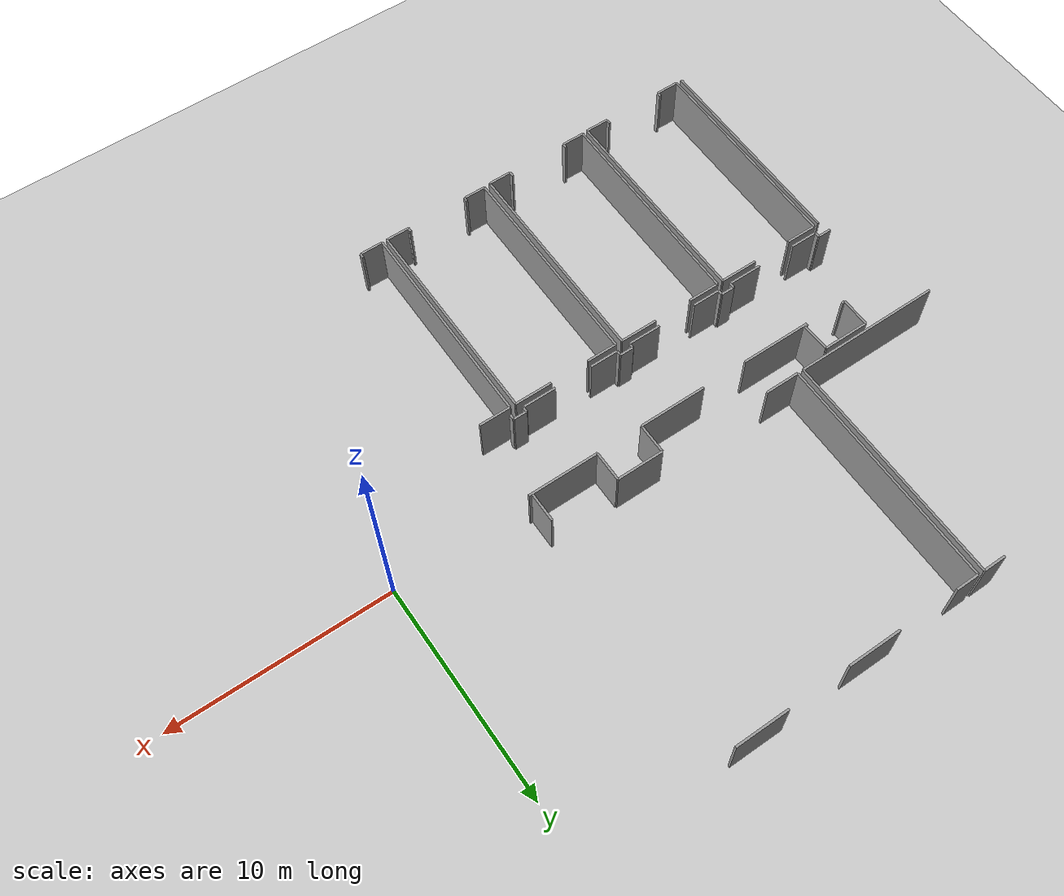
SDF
<sdf version="1.6">
 <world name="default">
  <model name="ground_plane">
   <static>1</static>
   <link name="link">
    <collision name="collision">
     <geometry><plane><normal>0 0 1</normal><size>100 100</size></plane></geometry>
     <surface><friction><ode><mu>100</mu><mu2>50</mu2></ode></friction></surface>
    </collision>
    <visual name="visual">
     <cast_shadows>0</cast_shadows>
     <geometry><plane><normal>0 0 1</normal><size>100 100</size></plane></geometry>
     <material>
      <script><uri>file://media/materials/scripts/gazebo.material</uri><name>Gazebo/Grey</name></script>
     </material>
    </visual>
   </link>
  </model>
  <model name="0510030968_A-40">
   <static>1</static>
   <link name="Wall_35">
    <collision name="Wall_35_Collision">
     <geometry><box><size>3.23386307913 0.1 2.5</size></box></geometry>
     <pose>1.61693153957 0 1.25 0 0 0</pose>
    </collision>
    <visual name="Wall_35_Visual">
     <pose>1.61693153957 0 1.25 0 0 0</pose>
     <geometry><box><size>3.23386307913 0.1 2.5</size></box></geometry>
     <material>
      <script><uri>file://media/materials/scripts/gazebo.material</uri><name>Gazebo/Grey</name></script>
      <ambient>1 1 1 1</ambient>
     </material>
    </visual>
    <pose>18.9809062845 -12.2749850731 0 0 0 0.0</pose>
   </link>
   <link name="Wall_36">
    <collision name="Wall_36_Collision">
     <geometry><box><size>3.08218046928 0.1 2.5</size></box></geometry>
     <pose>1.54109023464 0 1.25 0 0 0</pose>
    </collision>
    <visual name="Wall_36_Visual">
     <pose>1.54109023464 0 1.25 0 0 0</pose>
     <geometry><box><size>3.08218046928 0.1 2.5</size></box></geometry>
     <material>
      <script><uri>file://media/materials/scripts/gazebo.material</uri><name>Gazebo/Grey</name></script>
      <ambient>1 1 1 1</ambient>
     </material>
    </visual>
    <pose>24.3069476733 -12.2749850731 0 0 0 0.0</pose>
   </link>
   <link name="Wall_37">
    <collision name="Wall_37_Collision">
     <geometry><box><size>1.37568758972 0.1 2.5</size></box></geometry>
     <pose>0.68784379486 0 1.25 0 0 0</pose>
    </collision>
    <visual name="Wall_37_Visual">
     <pose>0.68784379486 0 1.25 0 0 0</pose>
     <geometry><box><size>1.37568758972 0.1 2.5</size></box></geometry>
     <material>
      <script><uri>file://media/materials/scripts/gazebo.material</uri><name>Gazebo/Grey</name></script>
      <ambient>1 1 1 1</ambient>
     </material>
    </visual>
    <pose>27.3891281426 -12.2749850731 0 0 0 1.57079632679</pose>
   </link>
   <link name="Wall_38">
    <collision name="Wall_38_Collision">
     <geometry><box><size>2.1384199093 0.1 2.5</size></box></geometry>
     <pose>1.06920995465 0 1.25 0 0 0</pose>
    </collision>
    <visual name="Wall_38_Visual">
     <pose>1.06920995465 0 1.25 0 0 0</pose>
     <geometry><box><size>2.1384199093 0.1 2.5</size></box></geometry>
     <material>
      <script><uri>file://media/materials/scripts/gazebo.material</uri><name>Gazebo/Grey</name></script>
      <ambient>1 1 1 1</ambient>
     </material>
    </visual>
    <pose>27.3891281426 -10.8992974834 0 0 0 0.0</pose>
   </link>
   <link name="Wall_39">
    <collision name="Wall_39_Collision">
     <geometry><box><size>1.37822833695 0.1 2.5</size></box></geometry>
     <pose>0.689114168477 0 1.25 0 0 0</pose>
    </collision>
    <visual name="Wall_39_Visual">
     <pose>0.689114168477 0 1.25 0 0 0</pose>
     <geometry><box><size>1.37822833695 0.1 2.5</size></box></geometry>
     <material>
      <script><uri>file://media/materials/scripts/gazebo.material</uri><name>Gazebo/Grey</name></script>
      <ambient>1 1 1 1</ambient>
     </material>
    </visual>
    <pose>29.5275480519 -10.8992974834 0 0 0 -1.57079632679</pose>
   </link>
   <link name="Wall_40">
    <collision name="Wall_40_Collision">
     <geometry><box><size>3.23259270551 0.1 2.5</size></box></geometry>
     <pose>1.61629635276 0 1.25 0 0 0</pose>
    </collision>
    <visual name="Wall_40_Visual">
     <pose>1.61629635276 0 1.25 0 0 0</pose>
     <geometry><box><size>3.23259270551 0.1 2.5</size></box></geometry>
     <material>
      <script><uri>file://media/materials/scripts/gazebo.material</uri><name>Gazebo/Grey</name></script>
      <ambient>1 1 1 1</ambient>
     </material>
    </visual>
    <pose>29.5275480519 -12.2775258203 0 0 0 0.0</pose>
   </link>
   <link name="Wall_73">
    <collision name="Wall_73_Collision">
     <geometry><box><size>0.243784697079 0.1 2.5</size></box></geometry>
     <pose>0.12189234854 0 1.25 0 0 0</pose>
    </collision>
    <visual name="Wall_73_Visual">
     <pose>0.12189234854 0 1.25 0 0 0</pose>
     <geometry><box><size>0.243784697079 0.1 2.5</size></box></geometry>
     <material>
      <script><uri>file://media/materials/scripts/gazebo.material</uri><name>Gazebo/Grey</name></script>
      <ambient>1 1 1 1</ambient>
     </material>
    </visual>
    <pose>31.3651434887 -15.6452862787 0 0 0 1.57079632679</pose>
   </link>
   <link name="Wall_74">
    <collision name="Wall_74_Collision">
     <geometry><box><size>0.609779336103 0.1 2.5</size></box></geometry>
     <pose>0.304889668051 0 1.25 0 0 0</pose>
    </collision>
    <visual name="Wall_74_Visual">
     <pose>0.304889668051 0 1.25 0 0 0</pose>
     <geometry><box><size>0.609779336103 0.1 2.5</size></box></geometry>
     <material>
      <script><uri>file://media/materials/scripts/gazebo.material</uri><name>Gazebo/Grey</name></script>
      <ambient>1 1 1 1</ambient>
     </material>
    </visual>
    <pose>31.3651434887 -15.4015015816 0 0 0 3.14159265359</pose>
   </link>
   <link name="Wall_75">
    <collision name="Wall_75_Collision">
     <geometry><box><size>0.242260248739 0.1 2.5</size></box></geometry>
     <pose>0.12113012437 0 1.25 0 0 0</pose>
    </collision>
    <visual name="Wall_75_Visual">
     <pose>0.12113012437 0 1.25 0 0 0</pose>
     <geometry><box><size>0.242260248739 0.1 2.5</size></box></geometry>
     <material>
      <script><uri>file://media/materials/scripts/gazebo.material</uri><name>Gazebo/Grey</name></script>
      <ambient>1 1 1 1</ambient>
     </material>
    </visual>
    <pose>30.7553641526 -15.4015015816 0 0 0 -1.57079632679</pose>
   </link>
   <link name="Wall_76">
    <collision name="Wall_76_Collision">
     <geometry><box><size>1.54579061702 0.1 2.5</size></box></geometry>
     <pose>0.77289530851 0 1.25 0 0 0</pose>
    </collision>
    <visual name="Wall_76_Visual">
     <pose>0.77289530851 0 1.25 0 0 0</pose>
     <geometry><box><size>1.54579061702 0.1 2.5</size></box></geometry>
     <material>
      <script><uri>file://media/materials/scripts/gazebo.material</uri><name>Gazebo/Grey</name></script>
      <ambient>1 1 1 1</ambient>
     </material>
    </visual>
    <pose>30.7553641526 -15.6437618304 0 0 0 3.14159265359</pose>
   </link>
   <link name="Wall_77">
    <collision name="Wall_77_Collision">
     <geometry><box><size>1.30353036828 0.1 2.5</size></box></geometry>
     <pose>0.651765184141 0 1.25 0 0 0</pose>
    </collision>
    <visual name="Wall_77_Visual">
     <pose>0.651765184141 0 1.25 0 0 0</pose>
     <geometry><box><size>1.30353036828 0.1 2.5</size></box></geometry>
     <material>
      <script><uri>file://media/materials/scripts/gazebo.material</uri><name>Gazebo/Grey</name></script>
      <ambient>1 1 1 1</ambient>
     </material>
    </visual>
    <pose>27.4610312893 -15.6437618304 0 0 0 3.14159265359</pose>
   </link>
   <link name="Wall_78">
    <collision name="Wall_78_Collision">
     <geometry><box><size>0.233621708144 0.1 2.5</size></box></geometry>
     <pose>0.116810854072 0 1.25 0 0 0</pose>
    </collision>
    <visual name="Wall_78_Visual">
     <pose>0.116810854072 0 1.25 0 0 0</pose>
     <geometry><box><size>0.233621708144 0.1 2.5</size></box></geometry>
     <material>
      <script><uri>file://media/materials/scripts/gazebo.material</uri><name>Gazebo/Grey</name></script>
      <ambient>1 1 1 1</ambient>
     </material>
    </visual>
    <pose>26.157500921 -15.6437618304 0 0 0 1.57079632679</pose>
   </link>
   <link name="Wall_79">
    <collision name="Wall_79_Collision">
     <geometry><box><size>0.622737146995 0.1 2.5</size></box></geometry>
     <pose>0.311368573497 0 1.25 0 0 0</pose>
    </collision>
    <visual name="Wall_79_Visual">
     <pose>0.311368573497 0 1.25 0 0 0</pose>
     <geometry><box><size>0.622737146995 0.1 2.5</size></box></geometry>
     <material>
      <script><uri>file://media/materials/scripts/gazebo.material</uri><name>Gazebo/Grey</name></script>
      <ambient>1 1 1 1</ambient>
     </material>
    </visual>
    <pose>26.157500921 -15.4101401222 0 0 0 3.14159265359</pose>
   </link>
   <link name="Wall_80">
    <collision name="Wall_80_Collision">
     <geometry><box><size>0.225237242273 0.1 2.5</size></box></geometry>
     <pose>0.112618621136 0 1.25 0 0 0</pose>
    </collision>
    <visual name="Wall_80_Visual">
     <pose>0.112618621136 0 1.25 0 0 0</pose>
     <geometry><box><size>0.225237242273 0.1 2.5</size></box></geometry>
     <material>
      <script><uri>file://media/materials/scripts/gazebo.material</uri><name>Gazebo/Grey</name></script>
      <ambient>1 1 1 1</ambient>
     </material>
    </visual>
    <pose>25.534763774 -15.4101401222 0 0 0 -1.57079632679</pose>
   </link>
   <link name="Wall_81">
    <collision name="Wall_81_Collision">
     <geometry><box><size>1.51187164145 0.1 2.5</size></box></geometry>
     <pose>0.755935820725 0 1.25 0 0 0</pose>
    </collision>
    <visual name="Wall_81_Visual">
     <pose>0.755935820725 0 1.25 0 0 0</pose>
     <geometry><box><size>1.51187164145 0.1 2.5</size></box></geometry>
     <material>
      <script><uri>file://media/materials/scripts/gazebo.material</uri><name>Gazebo/Grey</name></script>
      <ambient>1 1 1 1</ambient>
     </material>
    </visual>
    <pose>25.534763774 -15.6353773645 0 0 0 3.14159265359</pose>
   </link>
   <link name="Wall_82">
    <collision name="Wall_82_Collision">
     <geometry><box><size>1.30010035952 0.1 2.5</size></box></geometry>
     <pose>0.650050179758 0 1.25 0 0 0</pose>
    </collision>
    <visual name="Wall_82_Visual">
     <pose>0.650050179758 0 1.25 0 0 0</pose>
     <geometry><box><size>1.30010035952 0.1 2.5</size></box></geometry>
     <material>
      <script><uri>file://media/materials/scripts/gazebo.material</uri><name>Gazebo/Grey</name></script>
      <ambient>1 1 1 1</ambient>
     </material>
    </visual>
    <pose>22.2585972535 -15.6353773645 0 0 0 3.14159265359</pose>
   </link>
   <link name="Wall_83">
    <collision name="Wall_83_Collision">
     <geometry><box><size>0.229810587294 0.1 2.5</size></box></geometry>
     <pose>0.114905293647 0 1.25 0 0 0</pose>
    </collision>
    <visual name="Wall_83_Visual">
     <pose>0.114905293647 0 1.25 0 0 0</pose>
     <geometry><box><size>0.229810587294 0.1 2.5</size></box></geometry>
     <material>
      <script><uri>file://media/materials/scripts/gazebo.material</uri><name>Gazebo/Grey</name></script>
      <ambient>1 1 1 1</ambient>
     </material>
    </visual>
    <pose>20.9584968939 -15.6353773645 0 0 0 1.57079632679</pose>
   </link>
   <link name="Wall_84">
    <collision name="Wall_84_Collision">
     <geometry><box><size>0.610160448188 0.1 2.5</size></box></geometry>
     <pose>0.305080224094 0 1.25 0 0 0</pose>
    </collision>
    <visual name="Wall_84_Visual">
     <pose>0.305080224094 0 1.25 0 0 0</pose>
     <geometry><box><size>0.610160448188 0.1 2.5</size></box></geometry>
     <material>
      <script><uri>file://media/materials/scripts/gazebo.material</uri><name>Gazebo/Grey</name></script>
      <ambient>1 1 1 1</ambient>
     </material>
    </visual>
    <pose>20.9584968939 -15.4055667772 0 0 0 3.14159265359</pose>
   </link>
   <link name="Wall_85">
    <collision name="Wall_85_Collision">
     <geometry><box><size>0.232351334527 0.1 2.5</size></box></geometry>
     <pose>0.116175667264 0 1.25 0 0 0</pose>
    </collision>
    <visual name="Wall_85_Visual">
     <pose>0.116175667264 0 1.25 0 0 0</pose>
     <geometry><box><size>0.232351334527 0.1 2.5</size></box></geometry>
     <material>
      <script><uri>file://media/materials/scripts/gazebo.material</uri><name>Gazebo/Grey</name></script>
      <ambient>1 1 1 1</ambient>
     </material>
    </visual>
    <pose>20.3483364457 -15.4055667772 0 0 0 -1.57079632679</pose>
   </link>
   <link name="Wall_86">
    <collision name="Wall_86_Collision">
     <geometry><box><size>1.56154324987 0.1 2.5</size></box></geometry>
     <pose>0.780771624935 0 1.25 0 0 0</pose>
    </collision>
    <visual name="Wall_86_Visual">
     <pose>0.780771624935 0 1.25 0 0 0</pose>
     <geometry><box><size>1.56154324987 0.1 2.5</size></box></geometry>
     <material>
      <script><uri>file://media/materials/scripts/gazebo.material</uri><name>Gazebo/Grey</name></script>
      <ambient>1 1 1 1</ambient>
     </material>
    </visual>
    <pose>20.3483364457 -15.6379181117 0 0 0 3.14159265359</pose>
   </link>
   <link name="Wall_87">
    <collision name="Wall_87_Collision">
     <geometry><box><size>1.26122692684 0.1 2.5</size></box></geometry>
     <pose>0.63061346342 0 1.25 0 0 0</pose>
    </collision>
    <visual name="Wall_87_Visual">
     <pose>0.63061346342 0 1.25 0 0 0</pose>
     <geometry><box><size>1.26122692684 0.1 2.5</size></box></geometry>
     <material>
      <script><uri>file://media/materials/scripts/gazebo.material</uri><name>Gazebo/Grey</name></script>
      <ambient>1 1 1 1</ambient>
     </material>
    </visual>
    <pose>17.0315179694 -15.6379181117 0 0 0 3.14159265359</pose>
   </link>
   <link name="Wall_88">
    <collision name="Wall_88_Collision">
     <geometry><box><size>0.236416530102 0.1 2.5</size></box></geometry>
     <pose>0.118208265051 0 1.25 0 0 0</pose>
    </collision>
    <visual name="Wall_88_Visual">
     <pose>0.118208265051 0 1.25 0 0 0</pose>
     <geometry><box><size>0.236416530102 0.1 2.5</size></box></geometry>
     <material>
      <script><uri>file://media/materials/scripts/gazebo.material</uri><name>Gazebo/Grey</name></script>
      <ambient>1 1 1 1</ambient>
     </material>
    </visual>
    <pose>15.7702910426 -15.6379181117 0 0 0 1.57079632679</pose>
   </link>
   <link name="Wall_89">
    <collision name="Wall_89_Collision">
     <geometry><box><size>0.629470127164 0.1 2.5</size></box></geometry>
     <pose>0.314735063582 0 1.25 0 0 0</pose>
    </collision>
    <visual name="Wall_89_Visual">
     <pose>0.314735063582 0 1.25 0 0 0</pose>
     <geometry><box><size>0.629470127164 0.1 2.5</size></box></geometry>
     <material>
      <script><uri>file://media/materials/scripts/gazebo.material</uri><name>Gazebo/Grey</name></script>
      <ambient>1 1 1 1</ambient>
     </material>
    </visual>
    <pose>15.7702910426 -15.4015015816 0 0 0 3.14159265359</pose>
   </link>
   <link name="Wall_115">
    <collision name="Wall_115_Collision">
     <geometry><box><size>9.77873730657 0.1 2.5</size></box></geometry>
     <pose>4.88936865328 0 1.25 0 0 0</pose>
    </collision>
    <visual name="Wall_115_Visual">
     <pose>4.88936865328 0 1.25 0 0 0</pose>
     <geometry><box><size>9.77873730657 0.1 2.5</size></box></geometry>
     <material>
      <script><uri>file://media/materials/scripts/gazebo.material</uri><name>Gazebo/Grey</name></script>
      <ambient>1 1 1 1</ambient>
     </material>
    </visual>
    <pose>15.3412858722 -15.9358207249 0 0 0 -1.57352447852</pose>
   </link>
   <link name="Wall_116">
    <collision name="Wall_116_Collision">
     <geometry><box><size>1.07981757435 0.1 2.5</size></box></geometry>
     <pose>0.539908787174 0 1.25 0 0 0</pose>
    </collision>
    <visual name="Wall_116_Visual">
     <pose>0.539908787174 0 1.25 0 0 0</pose>
     <geometry><box><size>1.07981757435 0.1 2.5</size></box></geometry>
     <material>
      <script><uri>file://media/materials/scripts/gazebo.material</uri><name>Gazebo/Grey</name></script>
      <ambient>1 1 1 1</ambient>
     </material>
    </visual>
    <pose>20.5358435916 -25.7399291132 0 0 0 3.14159265359</pose>
   </link>
   <link name="Wall_117">
    <collision name="Wall_117_Collision">
     <geometry><box><size>0.228667251039 0.1 2.5</size></box></geometry>
     <pose>0.114333625519 0 1.25 0 0 0</pose>
    </collision>
    <visual name="Wall_117_Visual">
     <pose>0.114333625519 0 1.25 0 0 0</pose>
     <geometry><box><size>0.228667251039 0.1 2.5</size></box></geometry>
     <material>
      <script><uri>file://media/materials/scripts/gazebo.material</uri><name>Gazebo/Grey</name></script>
      <ambient>1 1 1 1</ambient>
     </material>
    </visual>
    <pose>19.4560260173 -25.7399291132 0 0 0 1.57079632679</pose>
   </link>
   <link name="Wall_118">
    <collision name="Wall_118_Collision">
     <geometry><box><size>0.197797172148 0.1 2.5</size></box></geometry>
     <pose>0.0988985860742 0 1.25 0 0 0</pose>
    </collision>
    <visual name="Wall_118_Visual">
     <pose>0.0988985860742 0 1.25 0 0 0</pose>
     <geometry><box><size>0.197797172148 0.1 2.5</size></box></geometry>
     <material>
      <script><uri>file://media/materials/scripts/gazebo.material</uri><name>Gazebo/Grey</name></script>
      <ambient>1 1 1 1</ambient>
     </material>
    </visual>
    <pose>16.6473569877 -25.5112618621 0 0 0 -1.57079632679</pose>
   </link>
   <link name="Wall_119">
    <collision name="Wall_119_Collision">
     <geometry><box><size>1.06088900746 0.1 2.5</size></box></geometry>
     <pose>0.530444503729 0 1.25 0 0 0</pose>
    </collision>
    <visual name="Wall_119_Visual">
     <pose>0.530444503729 0 1.25 0 0 0</pose>
     <geometry><box><size>1.06088900746 0.1 2.5</size></box></geometry>
     <material>
      <script><uri>file://media/materials/scripts/gazebo.material</uri><name>Gazebo/Grey</name></script>
      <ambient>1 1 1 1</ambient>
     </material>
    </visual>
    <pose>16.6473569877 -25.7090590343 0 0 0 3.14159265359</pose>
   </link>
   <link name="Wall_120">
    <collision name="Wall_120_Collision">
     <geometry><box><size>9.78492574666 0.1 2.5</size></box></geometry>
     <pose>4.89246287333 0 1.25 0 0 0</pose>
    </collision>
    <visual name="Wall_120_Visual">
     <pose>4.89246287333 0 1.25 0 0 0</pose>
     <geometry><box><size>9.78492574666 0.1 2.5</size></box></geometry>
     <material>
      <script><uri>file://media/materials/scripts/gazebo.material</uri><name>Gazebo/Grey</name></script>
      <ambient>1 1 1 1</ambient>
     </material>
    </visual>
    <pose>15.5864679802 -25.7090590343 0 0 0 1.57079632679</pose>
   </link>
   <link name="Wall_121">
    <collision name="Wall_121_Collision">
     <geometry><box><size>1.42396178716 0.1 2.5</size></box></geometry>
     <pose>0.711980893581 0 1.25 0 0 0</pose>
    </collision>
    <visual name="Wall_121_Visual">
     <pose>0.711980893581 0 1.25 0 0 0</pose>
     <geometry><box><size>1.42396178716 0.1 2.5</size></box></geometry>
     <material>
      <script><uri>file://media/materials/scripts/gazebo.material</uri><name>Gazebo/Grey</name></script>
      <ambient>1 1 1 1</ambient>
     </material>
    </visual>
    <pose>15.5864679802 -15.9241332876 0 0 0 0.0</pose>
   </link>
   <link name="Wall_122">
    <collision name="Wall_122_Collision">
     <geometry><box><size>1.72910552994 0.1 2.5</size></box></geometry>
     <pose>0.864552764968 0 1.25 0 0 0</pose>
    </collision>
    <visual name="Wall_122_Visual">
     <pose>0.864552764968 0 1.25 0 0 0</pose>
     <geometry><box><size>1.72910552994 0.1 2.5</size></box></geometry>
     <material>
      <script><uri>file://media/materials/scripts/gazebo.material</uri><name>Gazebo/Grey</name></script>
      <ambient>1 1 1 1</ambient>
     </material>
    </visual>
    <pose>18.7898420926 -15.9241332876 0 0 0 0.0</pose>
   </link>
   <link name="Wall_123">
    <collision name="Wall_123_Collision">
     <geometry><box><size>9.81581036709 0.1 2.5</size></box></geometry>
     <pose>4.90790518355 0 1.25 0 0 0</pose>
    </collision>
    <visual name="Wall_123_Visual">
     <pose>4.90790518355 0 1.25 0 0 0</pose>
     <geometry><box><size>9.81581036709 0.1 2.5</size></box></geometry>
     <material>
      <script><uri>file://media/materials/scripts/gazebo.material</uri><name>Gazebo/Grey</name></script>
      <ambient>1 1 1 1</ambient>
     </material>
    </visual>
    <pose>20.5189476225 -15.9241332876 0 0 0 -1.56907502445</pose>
   </link>
   <link name="Wall_124">
    <collision name="Wall_124_Collision">
     <geometry><box><size>1.05872937231 0.1 2.5</size></box></geometry>
     <pose>0.529364686154 0 1.25 0 0 0</pose>
    </collision>
    <visual name="Wall_124_Visual">
     <pose>0.529364686154 0 1.25 0 0 0</pose>
     <geometry><box><size>1.05872937231 0.1 2.5</size></box></geometry>
     <material>
      <script><uri>file://media/materials/scripts/gazebo.material</uri><name>Gazebo/Grey</name></script>
      <ambient>1 1 1 1</ambient>
     </material>
    </visual>
    <pose>25.713886454 -25.7386587395 0 0 0 3.14159265359</pose>
   </link>
   <link name="Wall_125">
    <collision name="Wall_125_Collision">
     <geometry><box><size>0.231843185081 0.1 2.5</size></box></geometry>
     <pose>0.11592159254 0 1.25 0 0 0</pose>
    </collision>
    <visual name="Wall_125_Visual">
     <pose>0.11592159254 0 1.25 0 0 0</pose>
     <geometry><box><size>0.231843185081 0.1 2.5</size></box></geometry>
     <material>
      <script><uri>file://media/materials/scripts/gazebo.material</uri><name>Gazebo/Grey</name></script>
      <ambient>1 1 1 1</ambient>
     </material>
    </visual>
    <pose>24.6551570817 -25.7386587395 0 0 0 1.57079632679</pose>
   </link>
   <link name="Wall_126">
    <collision name="Wall_126_Collision">
     <geometry><box><size>0.198813471042 0.1 2.5</size></box></geometry>
     <pose>0.0994067355209 0 1.25 0 0 0</pose>
    </collision>
    <visual name="Wall_126_Visual">
     <pose>0.0994067355209 0 1.25 0 0 0</pose>
     <geometry><box><size>0.198813471042 0.1 2.5</size></box></geometry>
     <material>
      <script><uri>file://media/materials/scripts/gazebo.material</uri><name>Gazebo/Grey</name></script>
      <ambient>1 1 1 1</ambient>
     </material>
    </visual>
    <pose>21.8492828741 -25.5068155545 0 0 0 -1.57079632679</pose>
   </link>
   <link name="Wall_127">
    <collision name="Wall_127_Collision">
     <geometry><box><size>1.04945564491 0.1 2.5</size></box></geometry>
     <pose>0.524727822453 0 1.25 0 0 0</pose>
    </collision>
    <visual name="Wall_127_Visual">
     <pose>0.524727822453 0 1.25 0 0 0</pose>
     <geometry><box><size>1.04945564491 0.1 2.5</size></box></geometry>
     <material>
      <script><uri>file://media/materials/scripts/gazebo.material</uri><name>Gazebo/Grey</name></script>
      <ambient>1 1 1 1</ambient>
     </material>
    </visual>
    <pose>21.8492828741 -25.7056290255 0 0 0 3.14159265359</pose>
   </link>
   <link name="Wall_128">
    <collision name="Wall_128_Collision">
     <geometry><box><size>9.78619612028 0.1 2.5</size></box></geometry>
     <pose>4.89309806014 0 1.25 0 0 0</pose>
    </collision>
    <visual name="Wall_128_Visual">
     <pose>4.89309806014 0 1.25 0 0 0</pose>
     <geometry><box><size>9.78619612028 0.1 2.5</size></box></geometry>
     <material>
      <script><uri>file://media/materials/scripts/gazebo.material</uri><name>Gazebo/Grey</name></script>
      <ambient>1 1 1 1</ambient>
     </material>
    </visual>
    <pose>20.7998272292 -25.7056290255 0 0 0 1.57079632679</pose>
   </link>
   <link name="Wall_129">
    <collision name="Wall_129_Collision">
     <geometry><box><size>1.43552218708 0.1 2.5</size></box></geometry>
     <pose>0.717761093538 0 1.25 0 0 0</pose>
    </collision>
    <visual name="Wall_129_Visual">
     <pose>0.717761093538 0 1.25 0 0 0</pose>
     <geometry><box><size>1.43552218708 0.1 2.5</size></box></geometry>
     <material>
      <script><uri>file://media/materials/scripts/gazebo.material</uri><name>Gazebo/Grey</name></script>
      <ambient>1 1 1 1</ambient>
     </material>
    </visual>
    <pose>20.7998272292 -15.9194329052 0 0 0 0.0</pose>
   </link>
   <link name="Wall_130">
    <collision name="Wall_130_Collision">
     <geometry><box><size>1.72072106406 0.1 2.5</size></box></geometry>
     <pose>0.860360532032 0 1.25 0 0 0</pose>
    </collision>
    <visual name="Wall_130_Visual">
     <pose>0.860360532032 0 1.25 0 0 0</pose>
     <geometry><box><size>1.72072106406 0.1 2.5</size></box></geometry>
     <material>
      <script><uri>file://media/materials/scripts/gazebo.material</uri><name>Gazebo/Grey</name></script>
      <ambient>1 1 1 1</ambient>
     </material>
    </visual>
    <pose>23.9978657723 -15.9194329052 0 0 0 0.0</pose>
   </link>
   <link name="Wall_131">
    <collision name="Wall_131_Collision">
     <geometry><box><size>9.81922695933 0.1 2.5</size></box></geometry>
     <pose>4.90961347967 0 1.25 0 0 0</pose>
    </collision>
    <visual name="Wall_131_Visual">
     <pose>4.90961347967 0 1.25 0 0 0</pose>
     <geometry><box><size>9.81922695933 0.1 2.5</size></box></geometry>
     <material>
      <script><uri>file://media/materials/scripts/gazebo.material</uri><name>Gazebo/Grey</name></script>
      <ambient>1 1 1 1</ambient>
     </material>
    </visual>
    <pose>25.7185868364 -15.9194329052 0 0 0 -1.57127501851</pose>
   </link>
   <link name="Wall_132">
    <collision name="Wall_132_Collision">
     <geometry><box><size>1.06774902499 0.1 2.5</size></box></geometry>
     <pose>0.533874512494 0 1.25 0 0 0</pose>
    </collision>
    <visual name="Wall_132_Visual">
     <pose>0.533874512494 0 1.25 0 0 0</pose>
     <geometry><box><size>1.06774902499 0.1 2.5</size></box></geometry>
     <material>
      <script><uri>file://media/materials/scripts/gazebo.material</uri><name>Gazebo/Grey</name></script>
      <ambient>1 1 1 1</ambient>
     </material>
    </visual>
    <pose>30.95290725 -25.7123620057 0 0 0 3.14159265359</pose>
   </link>
   <link name="Wall_133">
    <collision name="Wall_133_Collision">
     <geometry><box><size>0.198051246872 0.1 2.5</size></box></geometry>
     <pose>0.0990256234358 0 1.25 0 0 0</pose>
    </collision>
    <visual name="Wall_133_Visual">
     <pose>0.0990256234358 0 1.25 0 0 0</pose>
     <geometry><box><size>0.198051246872 0.1 2.5</size></box></geometry>
     <material>
      <script><uri>file://media/materials/scripts/gazebo.material</uri><name>Gazebo/Grey</name></script>
      <ambient>1 1 1 1</ambient>
     </material>
    </visual>
    <pose>29.885158225 -25.7123620057 0 0 0 1.57079632679</pose>
   </link>
   <link name="Wall_134">
    <collision name="Wall_134_Collision">
     <geometry><box><size>0.181155277767 0.1 2.5</size></box></geometry>
     <pose>0.0905776388836 0 1.25 0 0 0</pose>
    </collision>
    <visual name="Wall_134_Visual">
     <pose>0.0905776388836 0 1.25 0 0 0</pose>
     <geometry><box><size>0.181155277767 0.1 2.5</size></box></geometry>
     <material>
      <script><uri>file://media/materials/scripts/gazebo.material</uri><name>Gazebo/Grey</name></script>
      <ambient>1 1 1 1</ambient>
     </material>
    </visual>
    <pose>27.0456191166 -25.5143107588 0 0 0 -1.57079632679</pose>
   </link>
   <link name="Wall_135">
    <collision name="Wall_135_Collision">
     <geometry><box><size>1.02697003189 0.1 2.5</size></box></geometry>
     <pose>0.513485015943 0 1.25 0 0 0</pose>
    </collision>
    <visual name="Wall_135_Visual">
     <pose>0.513485015943 0 1.25 0 0 0</pose>
     <geometry><box><size>1.02697003189 0.1 2.5</size></box></geometry>
     <material>
      <script><uri>file://media/materials/scripts/gazebo.material</uri><name>Gazebo/Grey</name></script>
      <ambient>1 1 1 1</ambient>
     </material>
    </visual>
    <pose>27.0456191166 -25.6954660366 0 0 0 3.14159265359</pose>
   </link>
   <link name="Wall_136">
    <collision name="Wall_136_Collision">
     <geometry><box><size>9.76510791824 0.1 2.5</size></box></geometry>
     <pose>4.88255395912 0 1.25 0 0 0</pose>
    </collision>
    <visual name="Wall_136_Visual">
     <pose>4.88255395912 0 1.25 0 0 0</pose>
     <geometry><box><size>9.76510791824 0.1 2.5</size></box></geometry>
     <material>
      <script><uri>file://media/materials/scripts/gazebo.material</uri><name>Gazebo/Grey</name></script>
      <ambient>1 1 1 1</ambient>
     </material>
    </visual>
    <pose>26.0186490847 -25.6954660366 0 0 0 1.57079632679</pose>
   </link>
   <link name="Wall_137">
    <collision name="Wall_137_Collision">
     <geometry><box><size>1.39423504453 0.1 2.5</size></box></geometry>
     <pose>0.697117522263 0 1.25 0 0 0</pose>
    </collision>
    <visual name="Wall_137_Visual">
     <pose>0.697117522263 0 1.25 0 0 0</pose>
     <geometry><box><size>1.39423504453 0.1 2.5</size></box></geometry>
     <material>
      <script><uri>file://media/materials/scripts/gazebo.material</uri><name>Gazebo/Grey</name></script>
      <ambient>1 1 1 1</ambient>
     </material>
    </visual>
    <pose>26.0186490847 -15.9303581183 0 0 0 0.0</pose>
   </link>
   <link name="Wall_138">
    <collision name="Wall_138_Collision">
     <geometry><box><size>1.71525845751 0.1 2.5</size></box></geometry>
     <pose>0.857629228756 0 1.25 0 0 0</pose>
    </collision>
    <visual name="Wall_138_Visual">
     <pose>0.857629228756 0 1.25 0 0 0</pose>
     <geometry><box><size>1.71525845751 0.1 2.5</size></box></geometry>
     <material>
      <script><uri>file://media/materials/scripts/gazebo.material</uri><name>Gazebo/Grey</name></script>
      <ambient>1 1 1 1</ambient>
     </material>
    </visual>
    <pose>29.2016972192 -15.9303581183 0 0 0 0.0</pose>
   </link>
   <link name="Wall_139">
    <collision name="Wall_139_Collision">
     <geometry><box><size>9.78206995311 0.1 2.5</size></box></geometry>
     <pose>4.89103497656 0 1.25 0 0 0</pose>
    </collision>
    <visual name="Wall_139_Visual">
     <pose>4.89103497656 0 1.25 0 0 0</pose>
     <geometry><box><size>9.78206995311 0.1 2.5</size></box></geometry>
     <material>
      <script><uri>file://media/materials/scripts/gazebo.material</uri><name>Gazebo/Grey</name></script>
      <ambient>1 1 1 1</ambient>
     </material>
    </visual>
    <pose>30.9169556767 -15.9303581183 0 0 0 -1.5671210664</pose>
   </link>
   <link name="Wall_142">
    <collision name="Wall_142_Collision">
     <geometry><box><size>0.208341273168 0.1 2.5</size></box></geometry>
     <pose>0.104170636584 0 1.25 0 0 0</pose>
    </collision>
    <visual name="Wall_142_Visual">
     <pose>0.104170636584 0 1.25 0 0 0</pose>
     <geometry><box><size>0.208341273168 0.1 2.5</size></box></geometry>
     <material>
      <script><uri>file://media/materials/scripts/gazebo.material</uri><name>Gazebo/Grey</name></script>
      <ambient>1 1 1 1</ambient>
     </material>
    </visual>
    <pose>32.2571998425 -25.4991933128 0 0 0 -1.57079632679</pose>
   </link>
   <link name="Wall_143">
    <collision name="Wall_143_Collision">
     <geometry><box><size>1.0673679129 0.1 2.5</size></box></geometry>
     <pose>0.533683956452 0 1.25 0 0 0</pose>
    </collision>
    <visual name="Wall_143_Visual">
     <pose>0.533683956452 0 1.25 0 0 0</pose>
     <geometry><box><size>1.0673679129 0.1 2.5</size></box></geometry>
     <material>
      <script><uri>file://media/materials/scripts/gazebo.material</uri><name>Gazebo/Grey</name></script>
      <ambient>1 1 1 1</ambient>
     </material>
    </visual>
    <pose>32.2571998425 -25.7075345859 0 0 0 3.14159265359</pose>
   </link>
   <link name="Wall_144">
    <collision name="Wall_144_Collision">
     <geometry><box><size>9.77158682368 0.1 2.5</size></box></geometry>
     <pose>4.88579341184 0 1.25 0 0 0</pose>
    </collision>
    <visual name="Wall_144_Visual">
     <pose>4.88579341184 0 1.25 0 0 0</pose>
     <geometry><box><size>9.77158682368 0.1 2.5</size></box></geometry>
     <material>
      <script><uri>file://media/materials/scripts/gazebo.material</uri><name>Gazebo/Grey</name></script>
      <ambient>1 1 1 1</ambient>
     </material>
    </visual>
    <pose>31.1898319296 -25.7075345859 0 0 0 1.57079632679</pose>
   </link>
   <link name="Wall_145">
    <collision name="Wall_145_Collision">
     <geometry><box><size>1.43590329916 0.1 2.5</size></box></geometry>
     <pose>0.71795164958 0 1.25 0 0 0</pose>
    </collision>
    <visual name="Wall_145_Visual">
     <pose>0.71795164958 0 1.25 0 0 0</pose>
     <geometry><box><size>1.43590329916 0.1 2.5</size></box></geometry>
     <material>
      <script><uri>file://media/materials/scripts/gazebo.material</uri><name>Gazebo/Grey</name></script>
      <ambient>1 1 1 1</ambient>
     </material>
    </visual>
    <pose>31.1898319296 -15.9359477622 0 0 0 0.0</pose>
   </link>
   <link name="Wall_189">
    <collision name="Wall_189_Collision">
     <geometry><box><size>6.77426731202 0.1 2.5</size></box></geometry>
     <pose>3.38713365601 0 1.25 0 0 0</pose>
    </collision>
    <visual name="Wall_189_Visual">
     <pose>3.38713365601 0 1.25 0 0 0</pose>
     <geometry><box><size>6.77426731202 0.1 2.5</size></box></geometry>
     <material>
      <script><uri>file://media/materials/scripts/gazebo.material</uri><name>Gazebo/Grey</name></script>
      <ambient>1 1 1 1</ambient>
     </material>
    </visual>
    <pose>20.5147553896 -10.6487798061 0 0 0 3.14159265359</pose>
   </link>
   <link name="Wall_194">
    <collision name="Wall_194_Collision">
     <geometry><box><size>1.03865746916 0.1 2.5</size></box></geometry>
     <pose>0.519328734581 0 1.25 0 0 0</pose>
    </collision>
    <visual name="Wall_194_Visual">
     <pose>0.519328734581 0 1.25 0 0 0</pose>
     <geometry><box><size>1.03865746916 0.1 2.5</size></box></geometry>
     <material>
      <script><uri>file://media/materials/scripts/gazebo.material</uri><name>Gazebo/Grey</name></script>
      <ambient>1 1 1 1</ambient>
     </material>
    </visual>
    <pose>19.462250848 -0.0 0 0 0 0.0</pose>
   </link>
   <link name="Wall_195">
    <collision name="Wall_195_Collision">
     <geometry><box><size>10.6487888091 0.1 2.5</size></box></geometry>
     <pose>5.32439440456 0 1.25 0 0 0</pose>
    </collision>
    <visual name="Wall_195_Visual">
     <pose>5.32439440456 0 1.25 0 0 0</pose>
     <geometry><box><size>10.6487888091 0.1 2.5</size></box></geometry>
     <material>
      <script><uri>file://media/materials/scripts/gazebo.material</uri><name>Gazebo/Grey</name></script>
      <ambient>1 1 1 1</ambient>
     </material>
    </visual>
    <pose>20.5009083171 -0.0 0 0 0 -1.56949598395</pose>
   </link>
   <link name="Wall_197">
    <collision name="Wall_197_Collision">
     <geometry><box><size>1.57539032229 0.1 2.5</size></box></geometry>
     <pose>0.787695161147 0 1.25 0 0 0</pose>
    </collision>
    <visual name="Wall_197_Visual">
     <pose>0.787695161147 0 1.25 0 0 0</pose>
     <geometry><box><size>1.57539032229 0.1 2.5</size></box></geometry>
     <material>
      <script><uri>file://media/materials/scripts/gazebo.material</uri><name>Gazebo/Grey</name></script>
      <ambient>1 1 1 1</ambient>
     </material>
    </visual>
    <pose>22.3728038416 -10.6478905446 0 0 0 3.14159265359</pose>
   </link>
   <link name="Wall_198">
    <collision name="Wall_198_Collision">
     <geometry><box><size>10.6323919865 0.1 2.5</size></box></geometry>
     <pose>5.31619599324 0 1.25 0 0 0</pose>
    </collision>
    <visual name="Wall_198_Visual">
     <pose>5.31619599324 0 1.25 0 0 0</pose>
     <geometry><box><size>10.6323919865 0.1 2.5</size></box></geometry>
     <material>
      <script><uri>file://media/materials/scripts/gazebo.material</uri><name>Gazebo/Grey</name></script>
      <ambient>1 1 1 1</ambient>
     </material>
    </visual>
    <pose>20.7974135193 -10.6478905446 0 0 0 1.57079632679</pose>
   </link>
   <link name="Wall_199">
    <collision name="Wall_199_Collision">
     <geometry><box><size>1.06215938107 0.1 2.5</size></box></geometry>
     <pose>0.531079690537 0 1.25 0 0 0</pose>
    </collision>
    <visual name="Wall_199_Visual">
     <pose>0.531079690537 0 1.25 0 0 0</pose>
     <geometry><box><size>1.06215938107 0.1 2.5</size></box></geometry>
     <material>
      <script><uri>file://media/materials/scripts/gazebo.material</uri><name>Gazebo/Grey</name></script>
      <ambient>1 1 1 1</ambient>
     </material>
    </visual>
    <pose>20.7974135193 -0.0154985581259 0 0 0 0.0</pose>
   </link>
   <link name="Wall_200">
    <collision name="Wall_200_Collision">
     <geometry><box><size>2.43073287854 0.1 2.5</size></box></geometry>
     <pose>1.21536643927 0 1.25 0 0 0</pose>
    </collision>
    <visual name="Wall_200_Visual">
     <pose>1.21536643927 0 1.25 0 0 0</pose>
     <geometry><box><size>2.43073287854 0.1 2.5</size></box></geometry>
     <material>
      <script><uri>file://media/materials/scripts/gazebo.material</uri><name>Gazebo/Grey</name></script>
      <ambient>1 1 1 1</ambient>
     </material>
    </visual>
    <pose>24.6242870028 -0.0154985581259 0 0 0 0.0</pose>
   </link>
   <link name="Wall_201">
    <collision name="Wall_201_Collision">
     <geometry><box><size>2.42527027199 0.1 2.5</size></box></geometry>
     <pose>1.21263513599 0 1.25 0 0 0</pose>
    </collision>
    <visual name="Wall_201_Visual">
     <pose>1.21263513599 0 1.25 0 0 0</pose>
     <geometry><box><size>2.42527027199 0.1 2.5</size></box></geometry>
     <material>
      <script><uri>file://media/materials/scripts/gazebo.material</uri><name>Gazebo/Grey</name></script>
      <ambient>1 1 1 1</ambient>
     </material>
    </visual>
    <pose>29.8508581374 -0.0154985581259 0 0 0 0.0</pose>
   </link>
   <link name="Wall_218">
    <collision name="Wall_218_Collision">
     <geometry><box><size>0.14825260109 0.1 2.5</size></box></geometry>
     <pose>0.074126300545 0 1.25 0 0 0</pose>
    </collision>
    <visual name="Wall_218_Visual">
     <pose>0.074126300545 0 1.25 0 0 0</pose>
     <geometry><box><size>0.14825260109 0.1 2.5</size></box></geometry>
     <material>
      <script><uri>file://media/materials/scripts/gazebo.material</uri><name>Gazebo/Grey</name></script>
      <ambient>1 1 1 1</ambient>
     </material>
    </visual>
    <pose>19.1369081647 -12.2287434735 0 0 0 3.14159265359</pose>
   </link>
   <link name="Wall_219">
    <collision name="Wall_219_Collision">
     <geometry><box><size>0.155874842791 0.1 2.5</size></box></geometry>
     <pose>0.0779374213956 0 1.25 0 0 0</pose>
    </collision>
    <visual name="Wall_219_Visual">
     <pose>0.0779374213956 0 1.25 0 0 0</pose>
     <geometry><box><size>0.155874842791 0.1 2.5</size></box></geometry>
     <material>
      <script><uri>file://media/materials/scripts/gazebo.material</uri><name>Gazebo/Grey</name></script>
      <ambient>1 1 1 1</ambient>
     </material>
    </visual>
    <pose>17.1472490059 -12.2287434735 0 0 0 3.14159265359</pose>
   </link>
   <link name="Wall_220">
    <collision name="Wall_220_Collision">
     <geometry><box><size>1.31813966488 0.1 2.5</size></box></geometry>
     <pose>0.659069832438 0 1.25 0 0 0</pose>
    </collision>
    <visual name="Wall_220_Visual">
     <pose>0.659069832438 0 1.25 0 0 0</pose>
     <geometry><box><size>1.31813966488 0.1 2.5</size></box></geometry>
     <material>
      <script><uri>file://media/materials/scripts/gazebo.material</uri><name>Gazebo/Grey</name></script>
      <ambient>1 1 1 1</ambient>
     </material>
    </visual>
    <pose>16.9913741631 -12.2287434735 0 0 0 1.57079632679</pose>
   </link>
   <link name="Wall_221">
    <collision name="Wall_221_Collision">
     <geometry><box><size>2.10157907441 0.1 2.5</size></box></geometry>
     <pose>1.0507895372 0 1.25 0 0 0</pose>
    </collision>
    <visual name="Wall_221_Visual">
     <pose>1.0507895372 0 1.25 0 0 0</pose>
     <geometry><box><size>2.10157907441 0.1 2.5</size></box></geometry>
     <material>
      <script><uri>file://media/materials/scripts/gazebo.material</uri><name>Gazebo/Grey</name></script>
      <ambient>1 1 1 1</ambient>
     </material>
    </visual>
    <pose>16.9913741631 -10.9106038086 0 0 0 0.0</pose>
   </link>
   <link name="Wall_222">
    <collision name="Wall_222_Collision">
     <geometry><box><size>1.31887232579 0.1 2.5</size></box></geometry>
     <pose>0.659436162896 0 1.25 0 0 0</pose>
    </collision>
    <visual name="Wall_222_Visual">
     <pose>0.659436162896 0 1.25 0 0 0</pose>
     <geometry><box><size>1.31887232579 0.1 2.5</size></box></geometry>
     <material>
      <script><uri>file://media/materials/scripts/gazebo.material</uri><name>Gazebo/Grey</name></script>
      <ambient>1 1 1 1</ambient>
     </material>
    </visual>
    <pose>19.0929532375 -10.9106038086 0 0 0 -1.53746249502</pose>
   </link>
   <link name="Wall_225">
    <collision name="Wall_225_Collision">
     <geometry><box><size>1.33656008232 0.1 2.5</size></box></geometry>
     <pose>0.66828004116 0 1.25 0 0 0</pose>
    </collision>
    <visual name="Wall_225_Visual">
     <pose>0.66828004116 0 1.25 0 0 0</pose>
     <geometry><box><size>1.33656008232 0.1 2.5</size></box></geometry>
     <material>
      <script><uri>file://media/materials/scripts/gazebo.material</uri><name>Gazebo/Grey</name></script>
      <ambient>1 1 1 1</ambient>
     </material>
    </visual>
    <pose>32.6017251674 -12.2460205546 0 0 0 1.57079632679</pose>
   </link>
   <pose>-38.75 12.8899291132 0 0 0 0</pose>
  </model>
 </world>
</sdf>
